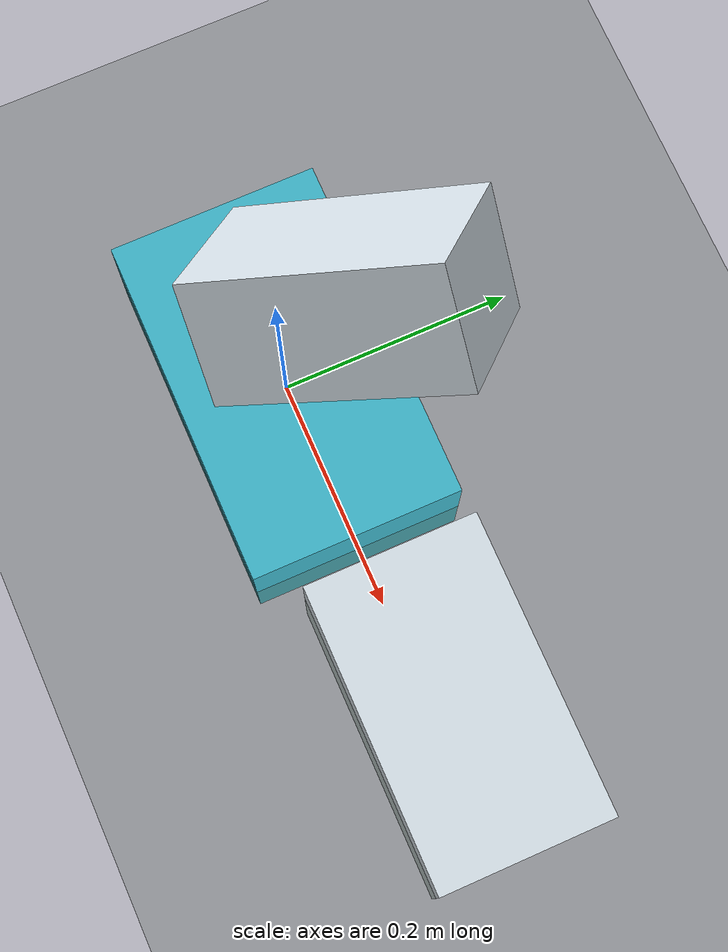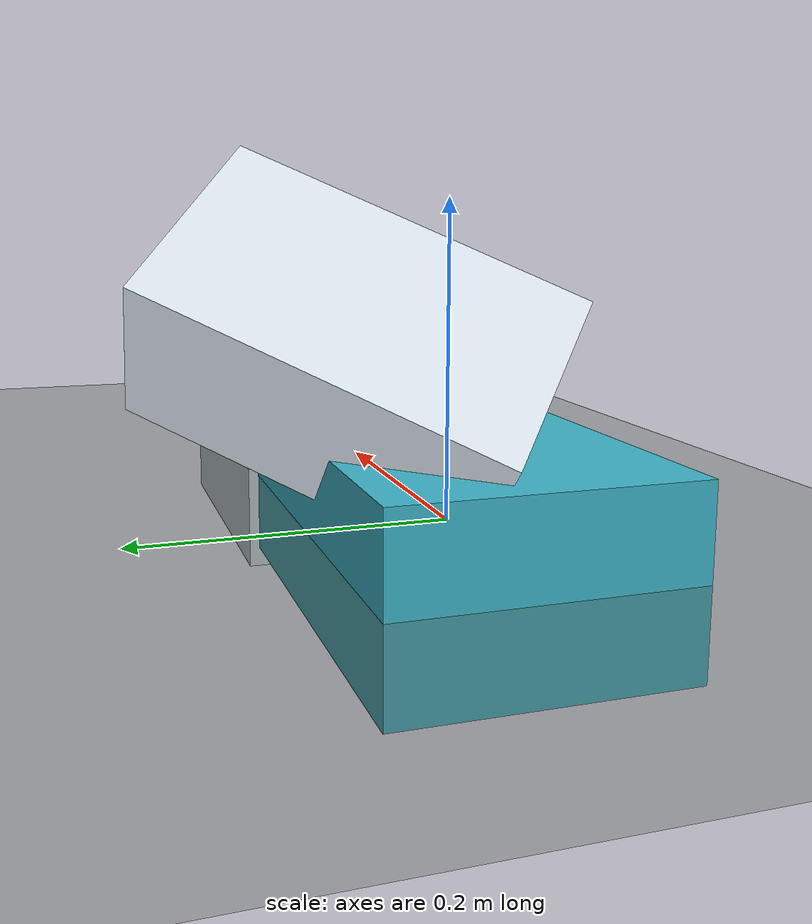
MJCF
<mujoco model="criatura">
  <compiler angle="degree" autolimits="true"/>
  <option timestep="0.002083" gravity="0 0 -9.81" integrator="implicitfast"/>
  <default>
    <geom type="box" density="300.0" rgba="0.85 0.89 0.92 1"/>
    <joint type="hinge"/>
    <motor ctrlrange="-1 1"/>
  </default>
  <worldbody>
    <geom name="suelo" type="plane" size="0 0 1" friction="1 0.005 0.0001" rgba="0.3 0.35 0.3 1"/>
    <body name="p0_n0" pos="0.00000 0.00000 0.00000" quat="1.000000 0.000000 0.000000 0.000000">
      <freejoint name="raiz"/>
      <geom name="g_p0_n0" size="0.15000 0.09000 0.05624" rgba="0.25 0.72 0.8 1"/>
      <body name="p1_n1" pos="0.30000 0.01863 -0.01185" quat="1.000000 0.000000 0.000000 0.000000">
        <joint name="p1_n1_j0" axis="0.0000 0.0000 1.0000" pos="-0.15000 0 0" range="-60.00 60.00" damping="0.2925"/>
        <geom name="g_p1_n1" size="0.13000 0.07500 0.06500"/>
      </body>
      <body name="p2_n1" pos="-0.01722 0.06636 0.10819" quat="0.824222 -0.192088 -0.336160 0.413227">
        <joint name="p2_n1_j0" axis="0.0000 0.0000 1.0000" pos="-0.13138 0 0" range="-60.00 60.00" damping="0.2147"/>
        <geom name="g_p2_n1" size="0.11138 0.06426 0.05569"/>
      </body>
    </body>
  </worldbody>
  <actuator>
    <motor name="m_p1_n1_j0" joint="p1_n1_j0" gear="5.8500"/>
    <motor name="m_p2_n1_j0" joint="p2_n1_j0" gear="4.2940"/>
  </actuator>
</mujoco>
